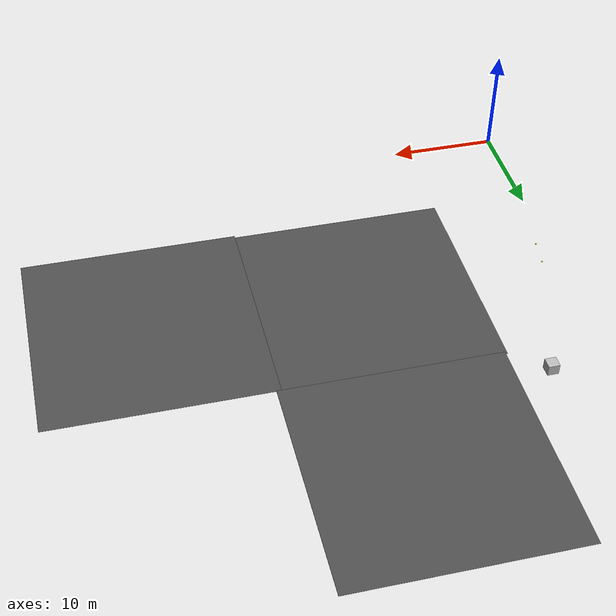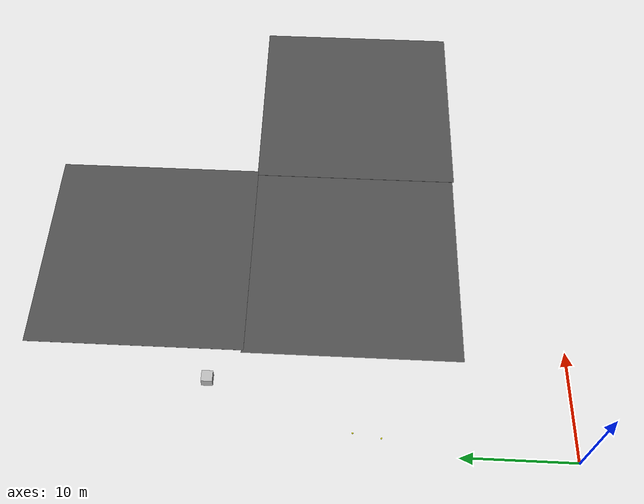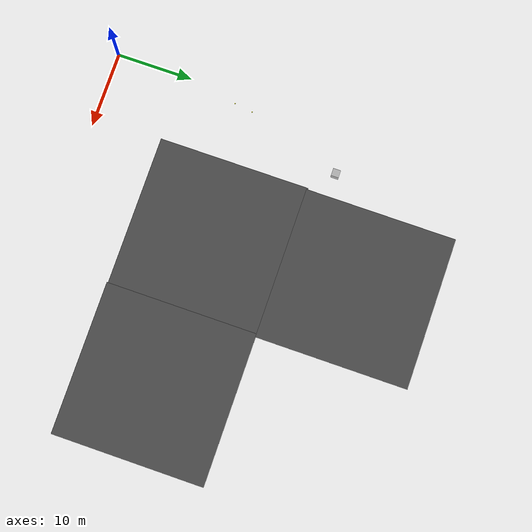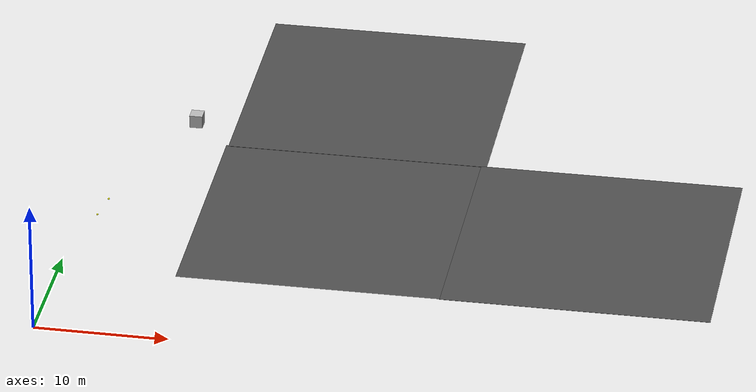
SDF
<sdf version="1.6">
 <world name="default">
  <model name="labrob_ground_7">
   <static>1</static>
   <link name="link">
    <collision name="collision">
     <geometry><plane><normal>0 0 1</normal><size>20 20</size></plane></geometry>
     <surface><friction><ode><mu>100</mu><mu2>50</mu2></ode></friction></surface>
    </collision>
    <visual name="visual">
     <cast_shadows>0</cast_shadows>
     <geometry><plane><normal>0 0 1</normal><size>20 20</size></plane></geometry>
     <material>
      <script>
       <uri>model://labrob_ground/materials/scripts/</uri>
       <uri>model://labrob_ground/materials/textures/</uri>
       <name>Labrob/AsphaltGround</name>
      </script>
     </material>
    </visual>
   </link>
   <pose>18.7361 18.9694 0 0 -0 0</pose>
  </model>
  <model name="labrob_ground_10">
   <static>1</static>
   <link name="link">
    <collision name="collision">
     <geometry><plane><normal>0 0 1</normal><size>20 20</size></plane></geometry>
     <surface><friction><ode><mu>100</mu><mu2>50</mu2></ode></friction></surface>
    </collision>
    <visual name="visual">
     <cast_shadows>0</cast_shadows>
     <geometry><plane><normal>0 0 1</normal><size>20 20</size></plane></geometry>
     <material>
      <script>
       <uri>model://labrob_ground/materials/scripts/</uri>
       <uri>model://labrob_ground/materials/textures/</uri>
       <name>Labrob/AsphaltGround</name>
      </script>
     </material>
    </visual>
   </link>
   <pose>18.9313 38.763 0 0 -0 0</pose>
  </model>
  <model name="labrob_ground_11">
   <static>1</static>
   <link name="link">
    <collision name="collision">
     <geometry><plane><normal>0 0 1</normal><size>20 20</size></plane></geometry>
     <surface><friction><ode><mu>100</mu><mu2>50</mu2></ode></friction></surface>
    </collision>
    <visual name="visual">
     <cast_shadows>0</cast_shadows>
     <geometry><plane><normal>0 0 1</normal><size>20 20</size></plane></geometry>
     <material>
      <script>
       <uri>model://labrob_ground/materials/scripts/</uri>
       <uri>model://labrob_ground/materials/textures/</uri>
       <name>Labrob/AsphaltGround</name>
      </script>
     </material>
    </visual>
   </link>
   <pose>38.4891 18.8271 0 0 -0 0</pose>
  </model>
  <model name="box_1">
   <pose>5.92949 31.654 0.499993 0 -2e-06 -0.000531</pose>
   <link name="link">
    <collision name="collision"><geometry><box><size>1 1 1</size></box></geometry></collision>
    <visual name="visual"><geometry><box><size>1 1 1</size></box></geometry></visual>
    <inertial>
     <inertia><ixx>1</ixx><ixy>0</ixy><ixz>0</ixz><iyy>1</iyy><iyz>0</iyz><izz>1</izz></inertia>
     <mass>1</mass>
    </inertial>
   </link>
   <plugin name="drone_plugin" filename="libdrone_plugin.so"/>
  </model>
  <model name="sphere_green_14_clone_50">
   <link name="chassis">
    <pose>0 0 0.25 0 -0 0</pose>
    <inertial>
     <mass>1</mass>
     <inertia><ixx>1</ixx><ixy>0</ixy><ixz>0</ixz><iyy>1</iyy><iyz>0</iyz><izz>1</izz></inertia>
    </inertial>
    <visual name="visual">
     <geometry><sphere><radius>0.07</radius></sphere></geometry>
     <material>
      <ambient>1 1 0 1</ambient>
      <diffuse>1 1 0 1</diffuse>
      <specular>0.1 0.1 0.1 1</specular>
      <emissive>1 1 0 1</emissive>
      <shader type="pixel"><normal_map>__default__</normal_map></shader>
      <script><name>ModelPreview_1::chassis::visual_MATERIAL_</name><uri>__default__</uri></script>
     </material>
    </visual>
    <collision name="collision">
     <geometry><sphere><radius>0.07</radius></sphere></geometry>
     <surface>
      <friction>
       <ode><mu>1</mu><mu2>1</mu2><fdir1>0 0 0</fdir1><slip1>0</slip1><slip2>0</slip2></ode>
       <torsional>
        <coefficient>1</coefficient>
        <patch_radius>0</patch_radius>
        <surface_radius>0</surface_radius>
        <use_patch_radius>1</use_patch_radius>
        <ode><slip>0</slip></ode>
       </torsional>
      </friction>
      <bounce><restitution_coefficient>0</restitution_coefficient><threshold>1e+06</threshold></bounce>
      <contact>
       <collide_without_contact>0</collide_without_contact>
       <collide_without_contact_bitmask>1</collide_without_contact_bitmask>
       <collide_bitmask>1</collide_bitmask>
       <ode>
        <soft_cfm>0</soft_cfm>
        <soft_erp>0.2</soft_erp>
        <kp>1e+13</kp>
        <kd>1</kd>
        <max_vel>0.01</max_vel>
        <min_depth>0</min_depth>
       </ode>
       <bullet>
        <split_impulse>1</split_impulse>
        <split_impulse_penetration_threshold>-0.01</split_impulse_penetration_threshold>
        <soft_cfm>0</soft_cfm>
        <soft_erp>0.2</soft_erp>
        <kp>1e+13</kp>
        <kd>1</kd>
       </bullet>
      </contact>
     </surface>
    </collision>
   </link>
   <static>1</static>
   <pose>1.6466 18.9051 0 0 -0 0</pose>
  </model>
  <model name="sphere_green_14_clone_51">
   <link name="chassis">
    <pose>0 0 0.25 0 -0 0</pose>
    <inertial>
     <mass>1</mass>
     <inertia><ixx>1</ixx><ixy>0</ixy><ixz>0</ixz><iyy>1</iyy><iyz>0</iyz><izz>1</izz></inertia>
    </inertial>
    <visual name="visual">
     <geometry><sphere><radius>0.07</radius></sphere></geometry>
     <material>
      <ambient>1 1 0 1</ambient>
      <diffuse>1 1 0 1</diffuse>
      <specular>0.1 0.1 0.1 1</specular>
      <emissive>1 1 0 1</emissive>
      <shader type="pixel"><normal_map>__default__</normal_map></shader>
      <script><name>ModelPreview_1::chassis::visual_MATERIAL_</name><uri>__default__</uri></script>
     </material>
    </visual>
    <collision name="collision">
     <geometry><sphere><radius>0.07</radius></sphere></geometry>
     <surface>
      <friction>
       <ode><mu>1</mu><mu2>1</mu2><fdir1>0 0 0</fdir1><slip1>0</slip1><slip2>0</slip2></ode>
       <torsional>
        <coefficient>1</coefficient>
        <patch_radius>0</patch_radius>
        <surface_radius>0</surface_radius>
        <use_patch_radius>1</use_patch_radius>
        <ode><slip>0</slip></ode>
       </torsional>
      </friction>
      <bounce><restitution_coefficient>0</restitution_coefficient><threshold>1e+06</threshold></bounce>
      <contact>
       <collide_without_contact>0</collide_without_contact>
       <collide_without_contact_bitmask>1</collide_without_contact_bitmask>
       <collide_bitmask>1</collide_bitmask>
       <ode>
        <soft_cfm>0</soft_cfm>
        <soft_erp>0.2</soft_erp>
        <kp>1e+13</kp>
        <kd>1</kd>
        <max_vel>0.01</max_vel>
        <min_depth>0</min_depth>
       </ode>
       <bullet>
        <split_impulse>1</split_impulse>
        <split_impulse_penetration_threshold>-0.01</split_impulse_penetration_threshold>
        <soft_cfm>0</soft_cfm>
        <soft_erp>0.2</soft_erp>
        <kp>1e+13</kp>
        <kd>1</kd>
       </bullet>
      </contact>
     </surface>
    </collision>
   </link>
   <static>1</static>
   <pose>1.29713 16.4663 0 0 -0 0</pose>
  </model>
 </world>
</sdf>
